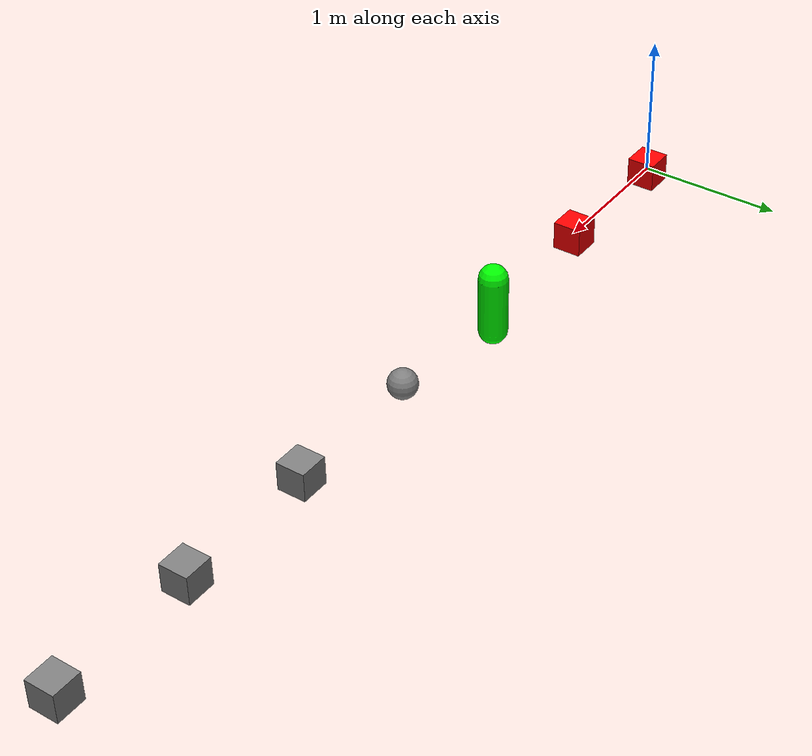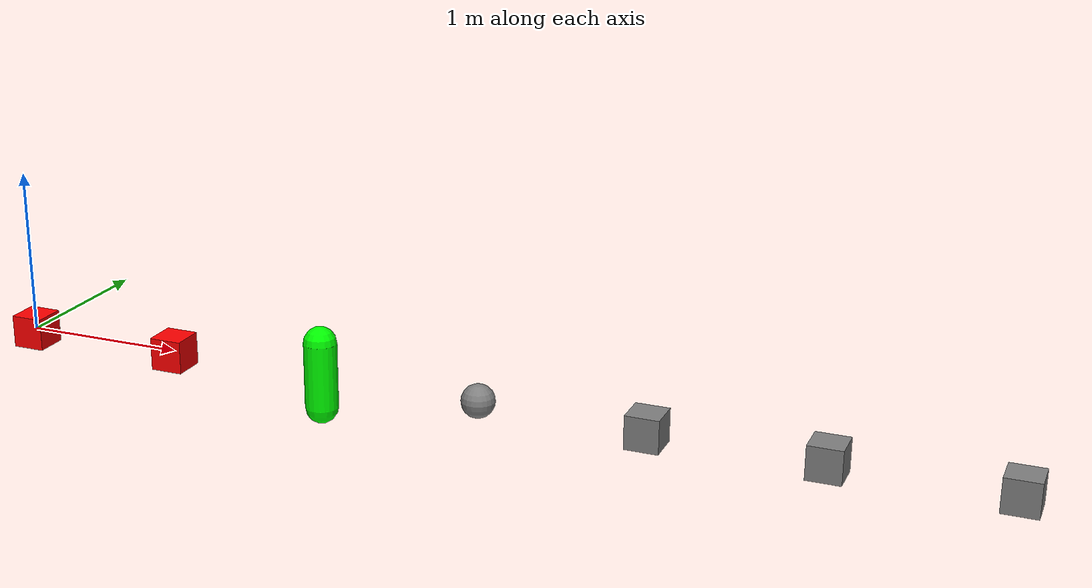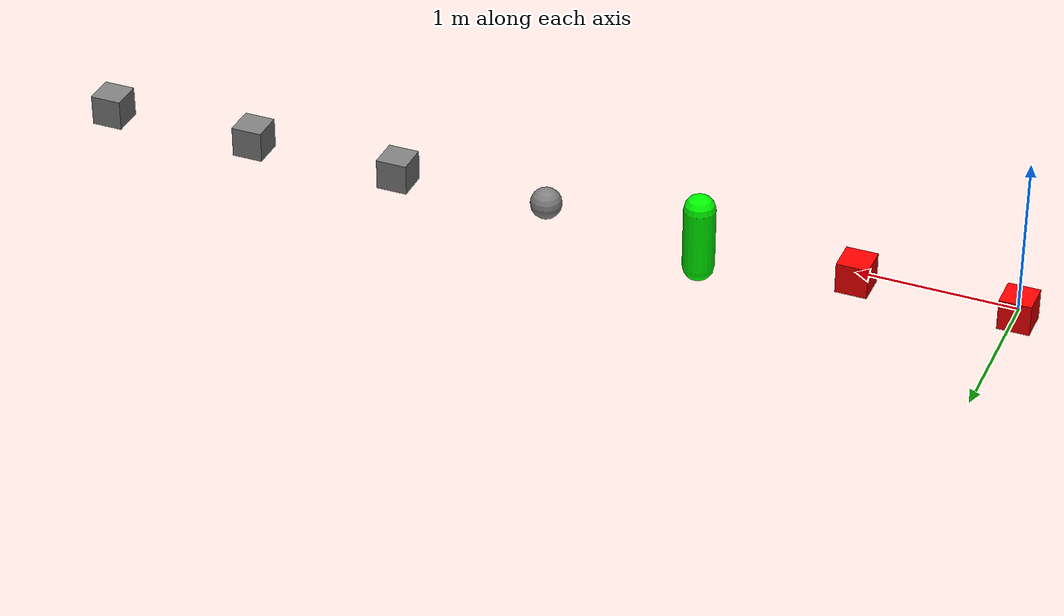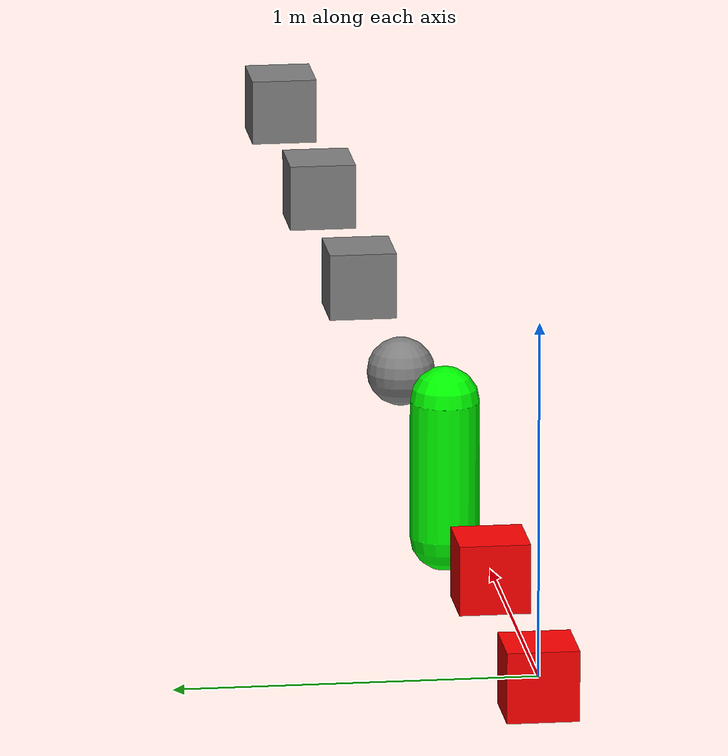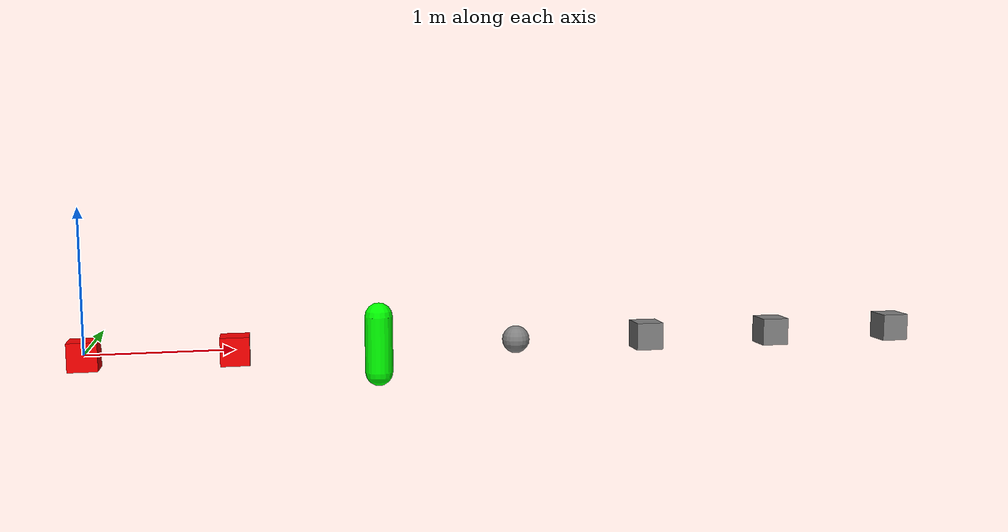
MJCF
<mujoco model="physics_materials">
    <asset>
        <material name="visual_mat_1" rgba="1 0 0 1"/>
        <material name="visual_mat_2" rgba="0 1 0 1"/>
    </asset>
    <worldbody>
        <!-- Case 1: Geom with custom friction and a visual material. -->
        <geom name="custom_friction_1" type="box" size="0.1 0.1 0.1" friction="0.8 0.1 0.05" material="visual_mat_1"/>

        <!-- Case 2: Another geom with the same friction and visual material. Should reuse both. -->
        <geom name="custom_friction_2" type="box" size="0.1 0.1 0.1" pos="1 0 0" friction="0.8 0.1 0.05" material="visual_mat_1"/>

        <!-- Case 3: Geom with different friction and a different visual material. -->
        <geom name="different_friction" type="capsule" size="0.1 0.2" pos="2 0 0" friction="0.5 0.2 0.1" material="visual_mat_2"/>

        <!-- Case 4: Geom with default friction and no visual material. -->
        <geom name="default_friction" type="sphere" size="0.1" pos="3 0 0"/>

        <!-- Case 5: Geom with direct-mode solref (both values negative → direct spring/damper). -->
        <geom name="direct_solref" type="box" size="0.1 0.1 0.1" pos="4 0 0" solref="-500 -50"/>

        <!-- Case 6: Geom with invalid solref (timeconst = 0 → uses engine defaults). -->
        <geom name="invalid_solref" type="box" size="0.1 0.1 0.1" pos="5 0 0" friction="0.3 0.01 0.001" solref="0 1"/>

        <!-- Case 7: Matching invalid solref should reuse Case 6's physics material. -->
        <geom name="invalid_solref_duplicate" type="box" size="0.1 0.1 0.1" pos="6 0 0" friction="0.3 0.01 0.001" solref="0 1"/>
    </worldbody>
</mujoco>
